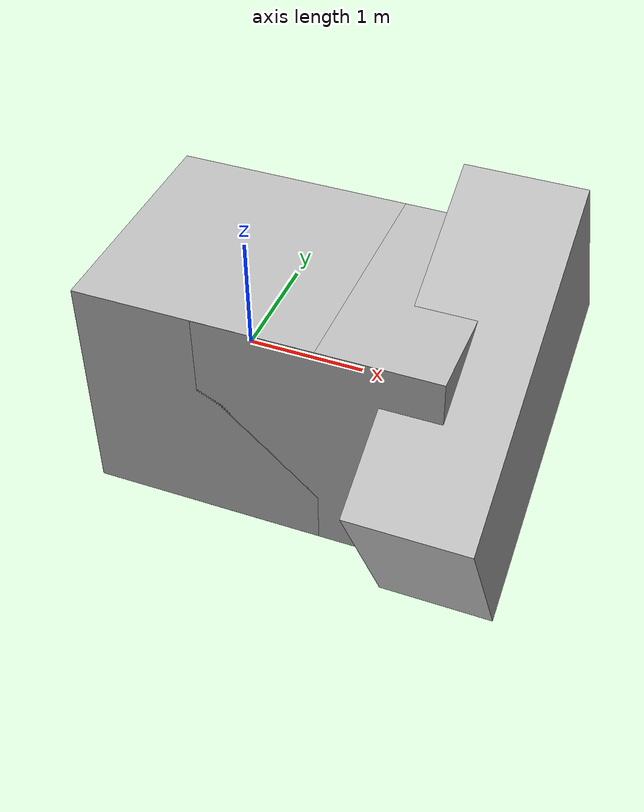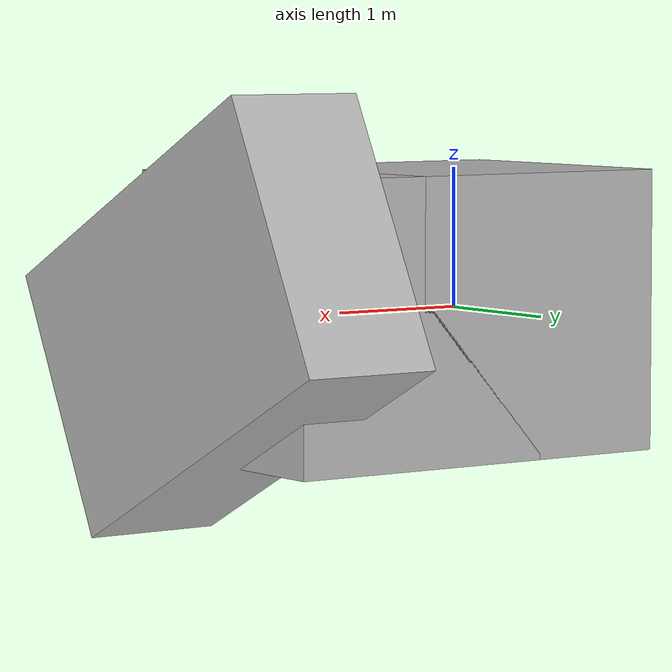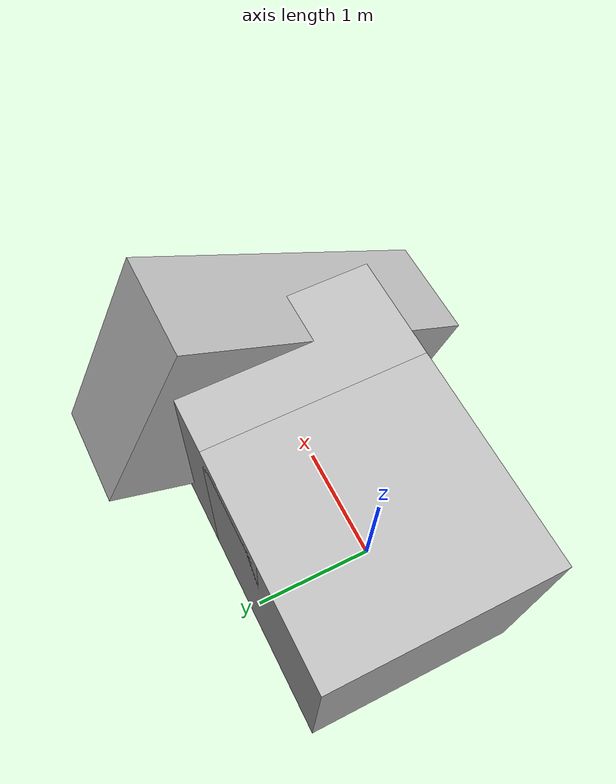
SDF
<?xml version="1.0"?>
<!-- This contains multiple examples of configuring visual roles for Drake. -->
<sdf version="1.7">
  <model name="visual_model">

    <link name="both_roles_by_default">
      <visual name="visual">
        <geometry>
          <mesh>
            <uri>package://drake/geometry/render/test/meshes/box.obj</uri>
          </mesh>
        </geometry>
        <!-- Saying nothing opts in to both roles. -->
      </visual>
    </link>

    <link name="both_roles_with_redundant_specification">
      <visual name="visual">
        <geometry>
          <mesh>
            <uri>package://drake/geometry/render/test/meshes/box.obj</uri>
          </mesh>
        </geometry>
        <!-- This is redundant; illustration_properties is still enabled.
         However, it will *not* generate any warning.  -->
        <drake:perception_properties enabled="true"/>
      </visual>
    </link>

    <link name="illustration_only">
      <visual name="visual">
        <geometry>
          <mesh>
            <uri>package://drake/geometry/render/test/meshes/box.obj</uri>
          </mesh>
        </geometry>
        <!-- This opts out of the perception role. Change this to
        drake:illustration_properties to opt out of the illustration role. -->
        <drake:perception_properties enabled="false"/>
      </visual>
    </link>

    <link name="different_colors">
      <visual name="visual">
        <!-- The box geometry has different colors based on role. In non-Drake
         loaders, sdformat's default white would be used and the Drake-specific
         colors would be ignored. -->
        <geometry>
          <box>
            <size>1 1 1</size>
          </box>
        </geometry>
        <drake:illustration_properties>
          <drake:diffuse>1 0 0</drake:diffuse>
        </drake:illustration_properties>
        <drake:perception_properties>
          <drake:diffuse>0 1 0</drake:diffuse>
        </drake:perception_properties>
      </visual>
    </link>

    <link name="per_role_geometry">
      <!-- The default geometry is the mesh, but gets replaced with a sphere
        for illustration. The illustration sphere is offset relative to the
        visual frame V in the +Vx direction.-->
      <visual name="visual">
        <!-- The mesh gets offset and rotated. -->
        <pose>1 0 0 0 1.57 0</pose>
        <geometry>
          <mesh>
            <uri>package://drake/geometry/render/test/meshes/box.obj</uri>
          </mesh>
        </geometry>
        <drake:illustration_properties enabled="false"/>
      </visual>

      <!-- Note this `name` *can* be the same name as the previous visual as the
       two geometries will have different roles. -->
      <drake:visual name="visual">
        <!-- This pose is relative to the link frame. So, to offset the box
         relative to the mesh, we need to combine the offset with the mesh's
         pose in the link frame. -->
        <drake:pose>2 0 0 90 0 0</drake:pose>
        <drake:geometry>
          <drake:box>
            <drake:size>1 2 3</drake:size>
          </drake:box>
        </drake:geometry>
        <drake:perception_properties enabled="false"/>
      </drake:visual>
    </link>

    <link name="no_geometry_left">
      <visual name="visual">
        <geometry>
          <mesh>
            <uri>package://drake/geometry/render/test/meshes/box.obj</uri>
          </mesh>
        </geometry>
        <drake:perception_properties enabled="false"/>
        <drake:illustration_properties enabled="false"/>
      </visual>
    </link>

    <link name="unused_default_geometry">
      <visual name="visual">
        <geometry>
          <mesh>
            <uri>package://drake/geometry/render/test/meshes/box.obj</uri>
          </mesh>
        </geometry>
        <drake:perception_properties enabled="false"/>
        <drake:illustration_properties enabled="false"/>
      </visual>

      <drake:visual name="illustration">
        <drake:pose>1 0 0 0 0 0</drake:pose>
        <drake:geometry>
          <drake:box>
            <drake:size>1 1 1</drake:size>
          </drake:box>
        </drake:geometry>
        <drake:perception_properties enabled="false"/>
      </drake:visual>

      <drake:visual name="perception">
        <drake:pose>1 0 0 0 0 0</drake:pose>
        <drake:geometry>
          <drake:box>
            <drake:size>1 1 1</drake:size>
          </drake:box>
        </drake:geometry>
        <drake:illustration_properties enabled="false"/>
      </drake:visual>
    </link>

  </model>
</sdf>
